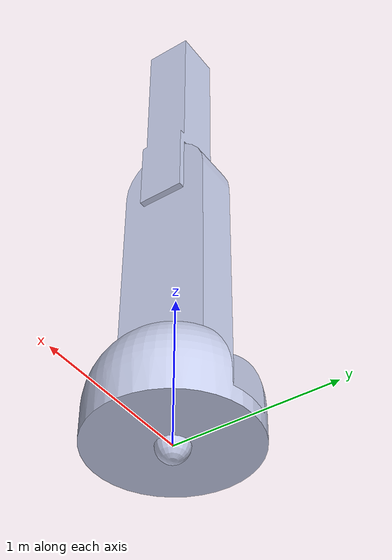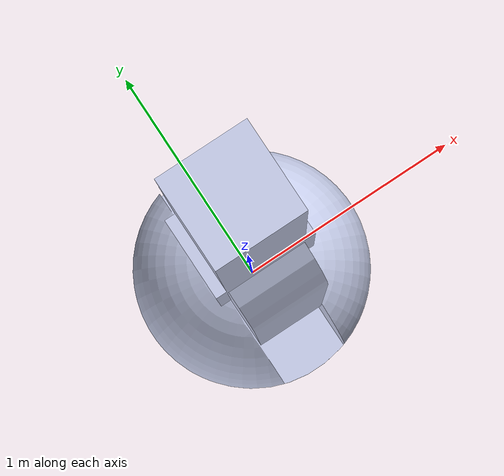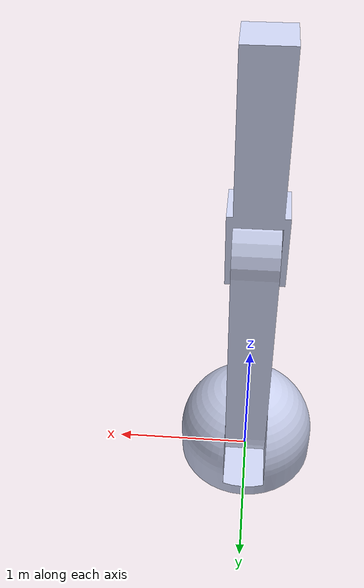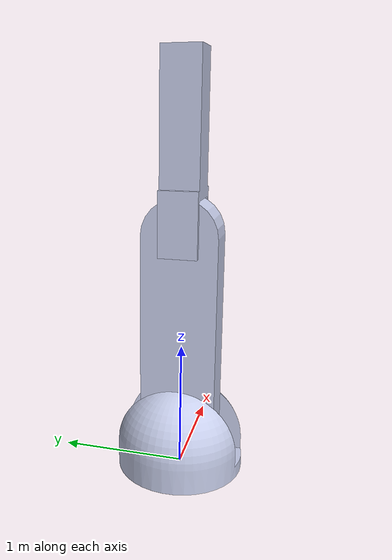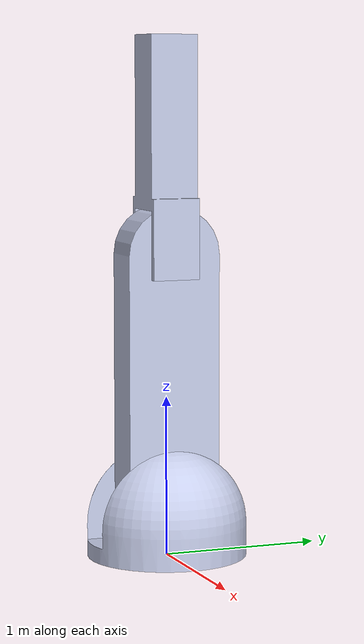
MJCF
<!-- Created using my conversion script found in utils/conversions.py -->
<mujoco model="arm">
    <compiler angle="degree" inertiafromgeom="true"/>
    <option integrator="RK4" timestep="0.01"/>
    <asset>
        <mesh name="base_link" file="base_link.STL"/>
        <mesh name="base" file="base.STL"/>
        <mesh name="lower" file="lower.STL"/>
        <mesh name="upper" file="upper.STL"/>
    </asset>
    <worldbody>
        <body name="base" pos="0 0 0" quat="1 1 0 0">
            <joint name="base" pos="0 0 0" axis="0 1 0" damping="100" frictionloss="50"/>
            <geom type="mesh" rgba="0.792157 0.819608 0.933333 1" mesh="base"/>
            <body name="lower" pos="0 0.4 0">
                <joint name="lower" pos="0 0 0" axis="1 0 0" range="-90 90" limited="true" damping="100" frictionloss="50"/>
                <geom type="mesh" rgba="0.792157 0.819608 0.933333 1" mesh="lower"/>
                <body name="upper" pos="0 1.5 0">
                    <camera name="camera" pos="0 0 0" quat="0 0 0 1"/>
                    <joint name="upper" pos="0 0 0" axis="1 0 0" range="-95 95" limited="true" damping="100" frictionloss="50"/>
                    <geom type="mesh" rgba="0.792157 0.819608 0.933333 1" mesh="upper"/>
                </body>
            </body>
        </body>
        <body name="target" pos="0 0 0">
            <joint name="target" type="free" damping="0"/>
            <geom type="sphere" rgba="0.792157 0.819608 0.933333 1" size="0.1"/>
        </body>
    </worldbody>
    <actuator>
        <motor gear="100" name="lower" joint="lower" ctrlrange="-250 250" ctrllimited="true"/>
        <motor gear="100" name="upper" joint="upper" ctrlrange="-250 250" ctrllimited="true"/>
        <motor gear="100" name="base" joint="base" ctrlrange="-250 250" ctrllimited="true" />
    </actuator>
    <sensor>

    </sensor>
</mujoco>
